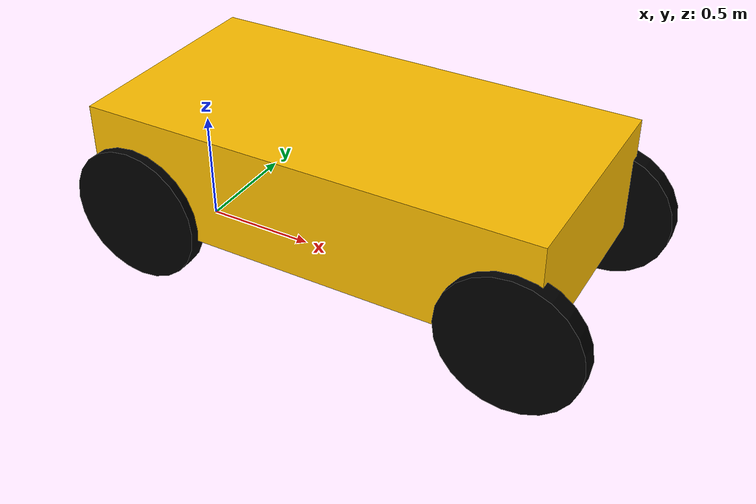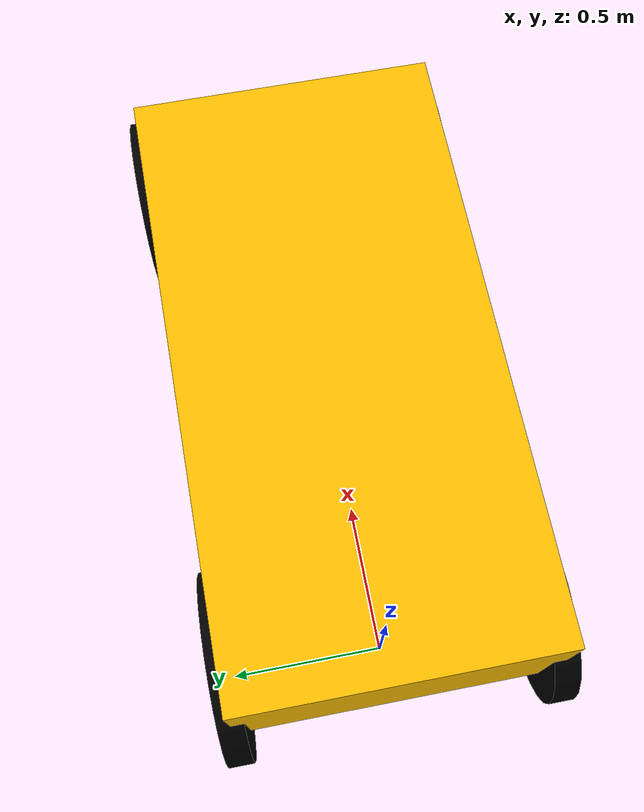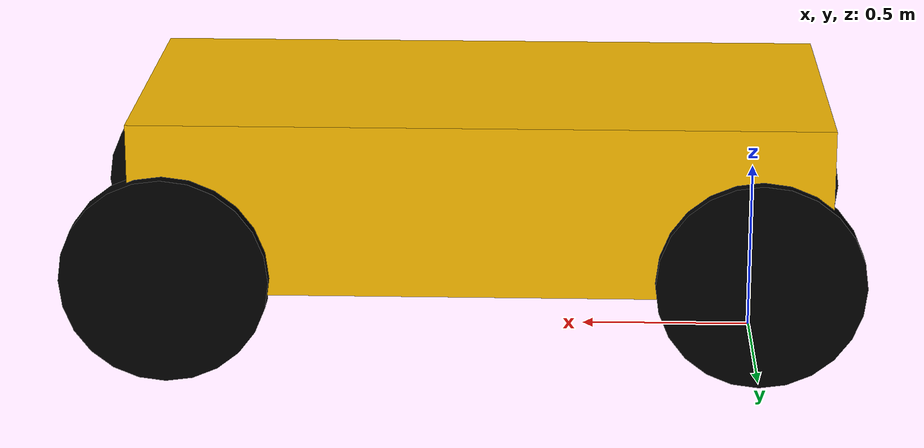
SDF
<sdf version='1.9'>
  <model name='ackermann_drive'>
    <link name='base_link'>
      <inertial>
        <pose>0.8 0 0.5 0 0 0</pose>
        <mass>100</mass>
        <inertia>
          <ixx>10.4</ixx>
          <ixy>0</ixy>
          <ixz>0</ixz>
          <iyy>35.399999999999991</iyy>
          <iyz>0</iyz>
          <izz>41.659999999999997</izz>
        </inertia>
      </inertial>
      <collision name='base_link_fixed_joint_lump__chassis_collision'>
        <pose>0.8 0 0.5 0 0 0</pose>
        <geometry>
          <box>
            <size>2 1 0.5</size>
          </box>
        </geometry>
      </collision>
      <visual name='base_link_fixed_joint_lump__chassis_visual'>
        <pose>0.8 0 0.5 0 0 0</pose>
        <geometry>
          <box>
            <size>2 1 0.5</size>
          </box>
        </geometry>
        <material>
          <diffuse>1 0.75 0 1</diffuse>
          <ambient>1 0.75 0 1</ambient>
        </material>
      </visual>
    </link>
    <joint name='left_wheel_steering_joint' type='revolute'>
      <pose relative_to='base_link'>1.7 -0.5 0.3 1.57 0 0</pose>
      <parent>base_link</parent>
      <child>left_wheel_steering</child>
      <axis>
        <xyz>0 1 0</xyz>
        <limit>
          <lower>-1.5700000000000001</lower>
          <upper>1.5700000000000001</upper>
          <effort>1000</effort>
          <velocity>30</velocity>
        </limit>
        <dynamics>
          <damping>0.20000000000000001</damping>
          <friction>0</friction>
          <spring_reference>0</spring_reference>
          <spring_stiffness>0</spring_stiffness>
        </dynamics>
      </axis>
    </joint>
    <link name='left_wheel_steering'>
      <pose relative_to='left_wheel_steering_joint'>0 0 0 0 0 0</pose>
      <inertial>
        <pose>0 0 0 0 0 0</pose>
        <mass>0.10000000000000001</mass>
        <inertia>
          <ixx>0</ixx>
          <ixy>0</ixy>
          <ixz>0</ixz>
          <iyy>0</iyy>
          <iyz>0</iyz>
          <izz>0</izz>
        </inertia>
      </inertial>
    </link>
    <joint name='front_left_wheel_joint' type='revolute'>
      <pose relative_to='left_wheel_steering'>0 0 0 0 0 0</pose>
      <parent>left_wheel_steering</parent>
      <child>front_left_wheel</child>
      <axis>
        <xyz>0 0 1</xyz>
        <limit>
          <lower>-10000000000000000</lower>
          <upper>10000000000000000</upper>
        </limit>
        <dynamics>
          <damping>0.20000000000000001</damping>
          <friction>0</friction>
          <spring_reference>0</spring_reference>
          <spring_stiffness>0</spring_stiffness>
        </dynamics>
      </axis>
    </joint>
    <link name='front_left_wheel'>
      <pose relative_to='front_left_wheel_joint'>0 0 0 0 0 0</pose>
      <inertial>
        <pose>0 0 0 0 0 0</pose>
        <mass>11.300000000000001</mass>
        <inertia>
          <ixx>0.26000000000000001</ixx>
          <ixy>0</ixy>
          <ixz>0</ixz>
          <iyy>0.26000000000000001</iyy>
          <iyz>0</iyz>
          <izz>0.51000000000000001</izz>
        </inertia>
      </inertial>
      <collision name='front_left_wheel_collision'>
        <pose>0 0 0 0 0 0</pose>
        <geometry>
          <cylinder>
            <length>0.080000000000000002</length>
            <radius>0.29999999999999999</radius>
          </cylinder>
        </geometry>
      </collision>
      <visual name='front_left_wheel_visual'>
        <pose>0 0 0 0 0 0</pose>
        <geometry>
          <cylinder>
            <length>0.080000000000000002</length>
            <radius>0.29999999999999999</radius>
          </cylinder>
        </geometry>
        <material>
          <diffuse>0 0 0 1</diffuse>
          <ambient>0 0 0 1</ambient>
        </material>
      </visual>
    </link>
    <joint name='rear_left_wheel_joint' type='revolute'>
      <pose relative_to='base_link'>0 0.5 0.3 -1.57 0 0</pose>
      <parent>base_link</parent>
      <child>rear_left_wheel</child>
      <axis>
        <xyz>0 0 1</xyz>
        <limit>
          <lower>-10000000000000000</lower>
          <upper>10000000000000000</upper>
        </limit>
        <dynamics>
          <damping>0.20000000000000001</damping>
          <friction>0</friction>
          <spring_reference>0</spring_reference>
          <spring_stiffness>0</spring_stiffness>
        </dynamics>
      </axis>
    </joint>
    <link name='rear_left_wheel'>
      <pose relative_to='rear_left_wheel_joint'>0 0 0 0 0 0</pose>
      <inertial>
        <pose>0 0 0 0 0 0</pose>
        <mass>11.300000000000001</mass>
        <inertia>
          <ixx>0.26000000000000001</ixx>
          <ixy>0</ixy>
          <ixz>0</ixz>
          <iyy>0.26000000000000001</iyy>
          <iyz>0</iyz>
          <izz>0.51000000000000001</izz>
        </inertia>
      </inertial>
      <collision name='rear_left_wheel_collision'>
        <pose>0 0 0 0 0 0</pose>
        <geometry>
          <cylinder>
            <length>0.080000000000000002</length>
            <radius>0.29999999999999999</radius>
          </cylinder>
        </geometry>
      </collision>
      <visual name='rear_left_wheel_visual'>
        <pose>0 0 0 0 0 0</pose>
        <geometry>
          <cylinder>
            <length>0.080000000000000002</length>
            <radius>0.29999999999999999</radius>
          </cylinder>
        </geometry>
        <material>
          <diffuse>0 0 0 1</diffuse>
          <ambient>0 0 0 1</ambient>
        </material>
      </visual>
    </link>
    <joint name='rear_right_wheel_joint' type='revolute'>
      <pose relative_to='base_link'>0 -0.5 0.3 -1.57 0 0</pose>
      <parent>base_link</parent>
      <child>rear_right_wheel</child>
      <axis>
        <xyz>0 0 1</xyz>
        <limit>
          <lower>-10000000000000000</lower>
          <upper>10000000000000000</upper>
        </limit>
        <dynamics>
          <damping>0.20000000000000001</damping>
          <friction>0</friction>
          <spring_reference>0</spring_reference>
          <spring_stiffness>0</spring_stiffness>
        </dynamics>
      </axis>
    </joint>
    <link name='rear_right_wheel'>
      <pose relative_to='rear_right_wheel_joint'>0 0 0 0 0 0</pose>
      <inertial>
        <pose>0 0 0 0 0 0</pose>
        <mass>11.300000000000001</mass>
        <inertia>
          <ixx>0.26000000000000001</ixx>
          <ixy>0</ixy>
          <ixz>0</ixz>
          <iyy>0.26000000000000001</iyy>
          <iyz>0</iyz>
          <izz>0.51000000000000001</izz>
        </inertia>
      </inertial>
      <collision name='rear_right_wheel_collision'>
        <pose>0 0 0 0 0 0</pose>
        <geometry>
          <cylinder>
            <length>0.080000000000000002</length>
            <radius>0.29999999999999999</radius>
          </cylinder>
        </geometry>
      </collision>
      <visual name='rear_right_wheel_visual'>
        <pose>0 0 0 0 0 0</pose>
        <geometry>
          <cylinder>
            <length>0.080000000000000002</length>
            <radius>0.29999999999999999</radius>
          </cylinder>
        </geometry>
        <material>
          <diffuse>0 0 0 1</diffuse>
          <ambient>0 0 0 1</ambient>
        </material>
      </visual>
    </link>
    <joint name='right_wheel_steering_joint' type='revolute'>
      <pose relative_to='base_link'>1.7 0.5 0.3 1.57 0 0</pose>
      <parent>base_link</parent>
      <child>right_wheel_steering</child>
      <axis>
        <xyz>0 1 0</xyz>
        <limit>
          <lower>-1.5700000000000001</lower>
          <upper>1.5700000000000001</upper>
          <effort>1000</effort>
          <velocity>30</velocity>
        </limit>
        <dynamics>
          <damping>0.20000000000000001</damping>
          <friction>0</friction>
          <spring_reference>0</spring_reference>
          <spring_stiffness>0</spring_stiffness>
        </dynamics>
      </axis>
    </joint>
    <link name='right_wheel_steering'>
      <pose relative_to='right_wheel_steering_joint'>0 0 0 0 0 0</pose>
      <inertial>
        <pose>0 0 0 0 0 0</pose>
        <mass>0.10000000000000001</mass>
        <inertia>
          <ixx>0</ixx>
          <ixy>0</ixy>
          <ixz>0</ixz>
          <iyy>0</iyy>
          <iyz>0</iyz>
          <izz>0</izz>
        </inertia>
      </inertial>
    </link>
    <joint name='front_right_wheel_joint' type='revolute'>
      <pose relative_to='right_wheel_steering'>0 0 0 0 0 0</pose>
      <parent>right_wheel_steering</parent>
      <child>front_right_wheel</child>
      <axis>
        <xyz>0 0 1</xyz>
        <limit>
          <lower>-10000000000000000</lower>
          <upper>10000000000000000</upper>
        </limit>
        <dynamics>
          <damping>0.20000000000000001</damping>
          <friction>0</friction>
          <spring_reference>0</spring_reference>
          <spring_stiffness>0</spring_stiffness>
        </dynamics>
      </axis>
    </joint>
    <link name='front_right_wheel'>
      <pose relative_to='front_right_wheel_joint'>0 0 0 0 0 0</pose>
      <inertial>
        <pose>0 0 0 0 0 0</pose>
        <mass>11.300000000000001</mass>
        <inertia>
          <ixx>0.26000000000000001</ixx>
          <ixy>0</ixy>
          <ixz>0</ixz>
          <iyy>0.26000000000000001</iyy>
          <iyz>0</iyz>
          <izz>0.51000000000000001</izz>
        </inertia>
      </inertial>
      <collision name='front_right_wheel_collision'>
        <pose>0 0 0 0 0 0</pose>
        <geometry>
          <cylinder>
            <length>0.080000000000000002</length>
            <radius>0.29999999999999999</radius>
          </cylinder>
        </geometry>
      </collision>
      <visual name='front_right_wheel_visual'>
        <pose>0 0 0 0 0 0</pose>
        <geometry>
          <cylinder>
            <length>0.080000000000000002</length>
            <radius>0.29999999999999999</radius>
          </cylinder>
        </geometry>
        <material>
          <diffuse>0 0 0 1</diffuse>
          <ambient>0 0 0 1</ambient>
        </material>
      </visual>
    </link>
    <plugin name='ign_ros2_control::IgnitionROS2ControlPlugin' filename='ign_ros2_control-system'>
      <parameters>/home/brittc/ros2_ws/src/gazebo_ackermann_control/config/ackermann_drive_controller.yaml</parameters>
    </plugin>
    <frame name='chassis_joint' attached_to='base_link'>
      <pose>0.8 0 0.5 0 -0 0</pose>
    </frame>
    <frame name='chassis' attached_to='chassis_joint'/>
  </model>
</sdf>
